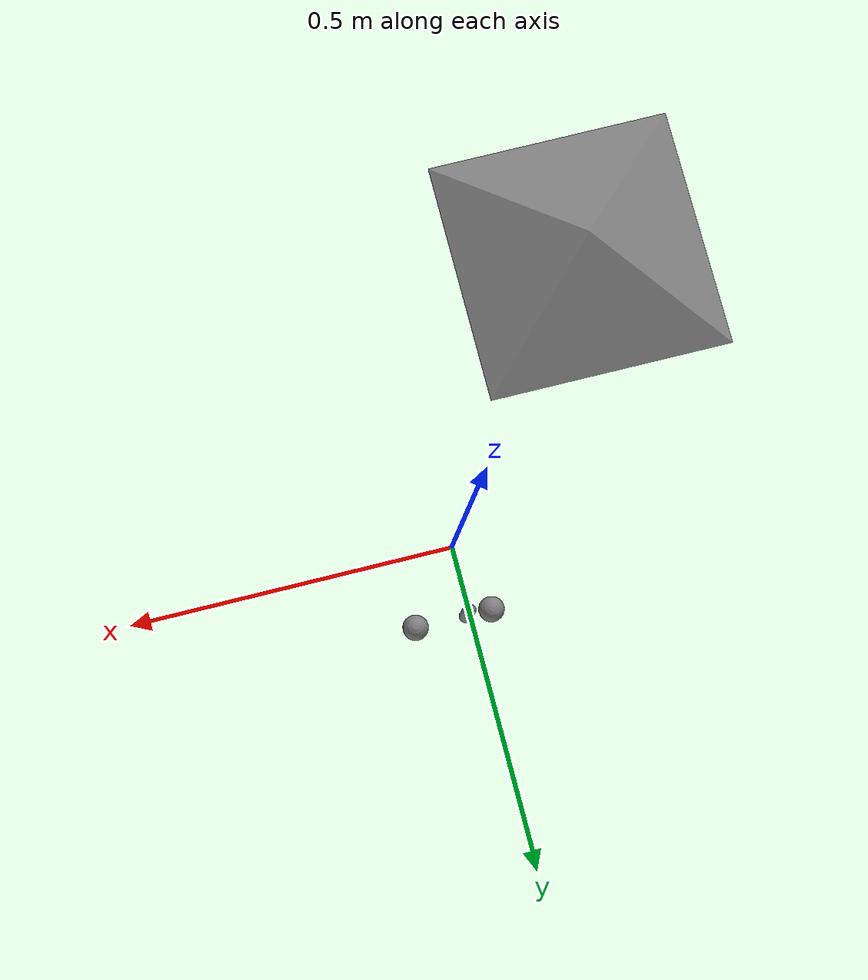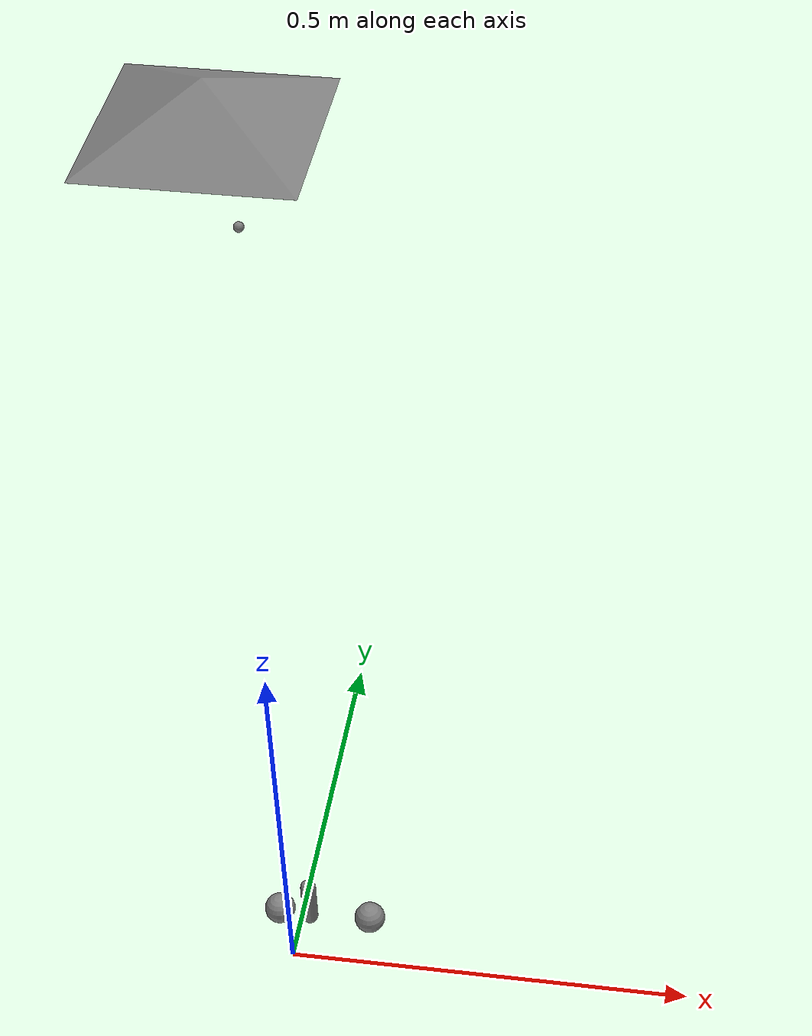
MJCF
<mujoco model="walker-fixture">
  <compiler angle="degree"/>
  <default>
    <default class="walker">
      <joint damping="0.5" armature="0.01"/>
      <default class="leg">
        <joint axis="0 1 0" range="-90 45" actuatorfrcrange="-40 40"/>
      </default>
      <default class="collision">
        <geom contype="1" conaffinity="1" group="3"/>
      </default>
      <default class="visual">
        <geom type="mesh" contype="0" conaffinity="0" group="2" density="0"/>
      </default>
    </default>
  </default>
  <asset>
    <mesh name="plate" vertex="-0.1 -0.1 0  0.1 -0.1 0  0.1 0.1 0  -0.1 0.1 0  0 0 0.05"/>
  </asset>
  <worldbody>
    <body name="torso" pos="0 0 1" childclass="walker">
      <freejoint name="root"/>
      <inertial pos="0 0 0.05" mass="10" diaginertia="0.3 0.2 0.1"/>
      <geom name="torso_box" class="collision" type="box" size="0.15 0.1 0.2"/>
      <geom class="visual" mesh="plate" pos="0 0 0.2"/>
      <site name="imu" pos="0.02 0 0.1"/>
      <body name="left_thigh" pos="0 0.1 -0.2">
        <inertial pos="0 0 -0.2" mass="3" diaginertia="0.05 0.05 0.01"/>
        <joint name="left_hip" class="leg"/>
        <geom class="collision" type="capsule" size="0.05" fromto="0 0 0 0 0 -0.4"/>
        <body name="left_shin" pos="0 0 -0.4">
          <inertial pos="0 0 -0.2" mass="2" diaginertia="0.03 0.03 0.005"/>
          <joint name="left_knee" axis="0 1 0" range="0 150" pos="0 0 0.02"/>
          <geom class="collision" type="cylinder" size="0.04 0.2" pos="0 0 -0.2"/>
          <body name="left_foot" pos="0 0 -0.42">
            <inertial pos="0.03 0 0" mass="0.5" diaginertia="0.002 0.002 0.001"/>
            <geom name="left_toe" type="sphere" size="0.02" pos="0.08 0 -0.02" contype="0" conaffinity="0"/>
            <geom name="left_heel" type="sphere" size="0.02" pos="-0.04 0 -0.02" contype="0" conaffinity="0"/>
            <geom name="left_ghost" type="capsule" size="0.01 0.03" contype="0" conaffinity="0"/>
          </body>
        </body>
      </body>
    </body>
  </worldbody>
  <contact>
    <pair geom1="left_toe" geom2="torso_box" condim="4" friction="0.8 0.8 0.02 0.001 0.001" solref="0.01 0.9"/>
    <pair geom1="left_heel" geom2="torso_box"/>
  </contact>
  <actuator>
    <motor name="left_hip" joint="left_hip" gear="2" forcerange="-20 20"/>
    <position name="left_knee" joint="left_knee" kp="50"/>
  </actuator>
  <sensor>
    <accelerometer site="imu"/>
    <gyro site="imu"/>
  </sensor>
</mujoco>
